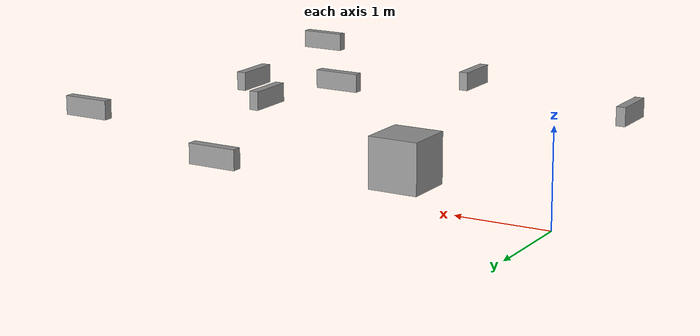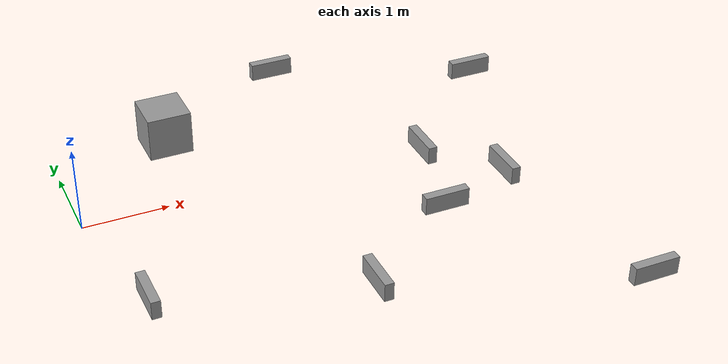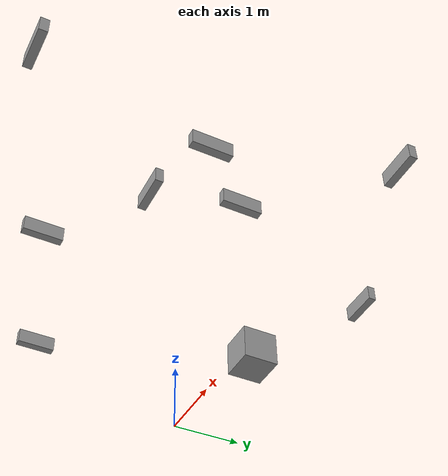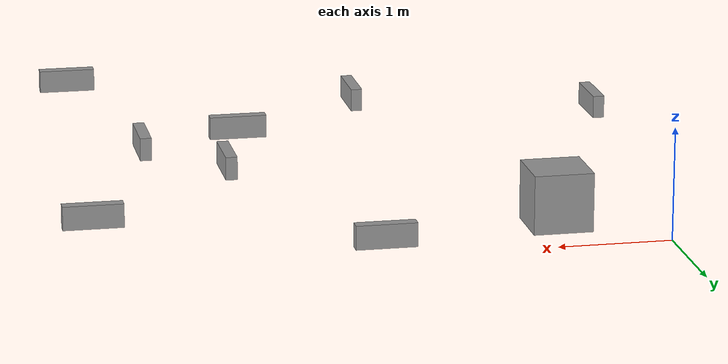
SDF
<?xml version='1.0'?>
<sdf version='1.7'>
  <model name='hyo_2'>
    <model name='hyo_1'>
      <link name='link'>
        <inertial>
          <mass>1</mass>
          <inertia>
            <ixx>0.166667</ixx>
            <ixy>0</ixy>
            <ixz>0</ixz>
            <iyy>0.166667</iyy>
            <iyz>0</iyz>
            <izz>0.166667</izz>
          </inertia>
          <pose>0 0 0 0 -0 0</pose>
        </inertial>
        <self_collide>0</self_collide>
        <enable_wind>0</enable_wind>
        <kinematic>0</kinematic>
        <pose>1.18783 0.618757 0.658808 0 -0 0</pose>
        <gravity>0</gravity>
        <visual name='visual'>
          <geometry>
            <box>
              <size>0.5 0.5 0.5</size>
            </box>
          </geometry>
          <material>
            <script>
              <name>Gazebo/Grey</name>
              <uri>file://media/materials/scripts/gazebo.material</uri>
            </script>
            <shader type='pixel'>
              <normal_map>__default__</normal_map>
            </shader>
            <ambient>0.3 0.3 0.3 1</ambient>
            <diffuse>0.7 0.7 0.7 1</diffuse>
            <specular>0.01 0.01 0.01 1</specular>
            <emissive>0 0 0 1</emissive>
          </material>
          <pose>0 0 0 0 -0 0</pose>
          <transparency>0</transparency>
          <cast_shadows>1</cast_shadows>
        </visual>
        <collision name='collision'>
          <laser_retro>0</laser_retro>
          <max_contacts>10</max_contacts>
          <pose>0 0 0 0 -0 0</pose>
          <geometry>
            <box>
              <size>1 1 1</size>
            </box>
          </geometry>
          <surface>
            <friction>
              <ode>
                <mu>1</mu>
                <mu2>1</mu2>
                <fdir1>0 0 0</fdir1>
                <slip1>0</slip1>
                <slip2>0</slip2>
              </ode>
              <torsional>
                <coefficient>1</coefficient>
                <patch_radius>0</patch_radius>
                <surface_radius>0</surface_radius>
                <use_patch_radius>1</use_patch_radius>
                <ode>
                  <slip>0</slip>
                </ode>
              </torsional>
            </friction>
            <bounce>
              <restitution_coefficient>0</restitution_coefficient>
              <threshold>1e+06</threshold>
            </bounce>
            <contact>
              <collide_without_contact>0</collide_without_contact>
              <collide_without_contact_bitmask>1</collide_without_contact_bitmask>
              <collide_bitmask>1</collide_bitmask>
              <ode>
                <soft_cfm>0</soft_cfm>
                <soft_erp>0.2</soft_erp>
                <kp>1e+13</kp>
                <kd>1</kd>
                <max_vel>0.01</max_vel>
                <min_depth>0</min_depth>
              </ode>
              <bullet>
                <split_impulse>1</split_impulse>
                <split_impulse_penetration_threshold>-0.01</split_impulse_penetration_threshold>
                <soft_cfm>0</soft_cfm>
                <soft_erp>0.2</soft_erp>
                <kp>1e+13</kp>
                <kd>1</kd>
              </bullet>
            </contact>
          </surface>
        </collision>
      </link>
      <link name='link_clone_0_clone'>
        <inertial>
          <mass>1</mass>
          <inertia>
            <ixx>0.166667</ixx>
            <ixy>0</ixy>
            <ixz>0</ixz>
            <iyy>0.166667</iyy>
            <iyz>0</iyz>
            <izz>0.166667</izz>
          </inertia>
          <pose>0 0 0 0 -0 0</pose>
        </inertial>
        <self_collide>0</self_collide>
        <enable_wind>0</enable_wind>
        <kinematic>0</kinematic>
        <pose>4.32452 -1.61475 0.658808 0 -0 0</pose>
        <gravity>0</gravity>
        <visual name='visual'>
          <geometry>
            <box>
              <size>0.1 0.5 0.2</size>
            </box>
          </geometry>
          <material>
            <script>
              <name>Gazebo/Grey</name>
              <uri>file://media/materials/scripts/gazebo.material</uri>
            </script>
            <shader type='pixel'>
              <normal_map>__default__</normal_map>
            </shader>
            <ambient>0.3 0.3 0.3 1</ambient>
            <diffuse>0.7 0.7 0.7 1</diffuse>
            <specular>0.01 0.01 0.01 1</specular>
            <emissive>0 0 0 1</emissive>
          </material>
          <pose>0 0 0 0 -0 0</pose>
          <transparency>0</transparency>
          <cast_shadows>1</cast_shadows>
        </visual>
        <collision name='collision'>
          <laser_retro>0</laser_retro>
          <max_contacts>10</max_contacts>
          <pose>0 0 0 0 -0 0</pose>
          <geometry>
            <box>
              <size>1 1 1</size>
            </box>
          </geometry>
          <surface>
            <friction>
              <ode>
                <mu>1</mu>
                <mu2>1</mu2>
                <fdir1>0 0 0</fdir1>
                <slip1>0</slip1>
                <slip2>0</slip2>
              </ode>
              <torsional>
                <coefficient>1</coefficient>
                <patch_radius>0</patch_radius>
                <surface_radius>0</surface_radius>
                <use_patch_radius>1</use_patch_radius>
                <ode>
                  <slip>0</slip>
                </ode>
              </torsional>
            </friction>
            <bounce>
              <restitution_coefficient>0</restitution_coefficient>
              <threshold>1e+06</threshold>
            </bounce>
            <contact>
              <collide_without_contact>0</collide_without_contact>
              <collide_without_contact_bitmask>1</collide_without_contact_bitmask>
              <collide_bitmask>1</collide_bitmask>
              <ode>
                <soft_cfm>0</soft_cfm>
                <soft_erp>0.2</soft_erp>
                <kp>1e+13</kp>
                <kd>1</kd>
                <max_vel>0.01</max_vel>
                <min_depth>0</min_depth>
              </ode>
              <bullet>
                <split_impulse>1</split_impulse>
                <split_impulse_penetration_threshold>-0.01</split_impulse_penetration_threshold>
                <soft_cfm>0</soft_cfm>
                <soft_erp>0.2</soft_erp>
                <kp>1e+13</kp>
                <kd>1</kd>
              </bullet>
            </contact>
          </surface>
        </collision>
      </link>
      <link name='link_clone_0_clone_0'>
        <inertial>
          <mass>1</mass>
          <inertia>
            <ixx>0.166667</ixx>
            <ixy>0</ixy>
            <ixz>0</ixz>
            <iyy>0.166667</iyy>
            <iyz>0</iyz>
            <izz>0.166667</izz>
          </inertia>
          <pose>0 0 0 0 -0 0</pose>
        </inertial>
        <self_collide>0</self_collide>
        <enable_wind>0</enable_wind>
        <kinematic>0</kinematic>
        <pose>3.69004 -0.905953 0.658808 0 -0 0</pose>
        <gravity>0</gravity>
        <visual name='visual'>
          <geometry>
            <box>
              <size>0.1 0.5 0.2</size>
            </box>
          </geometry>
          <material>
            <script>
              <name>Gazebo/Grey</name>
              <uri>file://media/materials/scripts/gazebo.material</uri>
            </script>
            <shader type='pixel'>
              <normal_map>__default__</normal_map>
            </shader>
            <ambient>0.3 0.3 0.3 1</ambient>
            <diffuse>0.7 0.7 0.7 1</diffuse>
            <specular>0.01 0.01 0.01 1</specular>
            <emissive>0 0 0 1</emissive>
          </material>
          <pose>0 0 0 0 -0 0</pose>
          <transparency>0</transparency>
          <cast_shadows>1</cast_shadows>
        </visual>
        <collision name='collision'>
          <laser_retro>0</laser_retro>
          <max_contacts>10</max_contacts>
          <pose>0 0 0 0 -0 0</pose>
          <geometry>
            <box>
              <size>1 1 1</size>
            </box>
          </geometry>
          <surface>
            <friction>
              <ode>
                <mu>1</mu>
                <mu2>1</mu2>
                <fdir1>0 0 0</fdir1>
                <slip1>0</slip1>
                <slip2>0</slip2>
              </ode>
              <torsional>
                <coefficient>1</coefficient>
                <patch_radius>0</patch_radius>
                <surface_radius>0</surface_radius>
                <use_patch_radius>1</use_patch_radius>
                <ode>
                  <slip>0</slip>
                </ode>
              </torsional>
            </friction>
            <bounce>
              <restitution_coefficient>0</restitution_coefficient>
              <threshold>1e+06</threshold>
            </bounce>
            <contact>
              <collide_without_contact>0</collide_without_contact>
              <collide_without_contact_bitmask>1</collide_without_contact_bitmask>
              <collide_bitmask>1</collide_bitmask>
              <ode>
                <soft_cfm>0</soft_cfm>
                <soft_erp>0.2</soft_erp>
                <kp>1e+13</kp>
                <kd>1</kd>
                <max_vel>0.01</max_vel>
                <min_depth>0</min_depth>
              </ode>
              <bullet>
                <split_impulse>1</split_impulse>
                <split_impulse_penetration_threshold>-0.01</split_impulse_penetration_threshold>
                <soft_cfm>0</soft_cfm>
                <soft_erp>0.2</soft_erp>
                <kp>1e+13</kp>
                <kd>1</kd>
              </bullet>
            </contact>
          </surface>
        </collision>
      </link>
      <link name='link_clone_0_clone_0_clone'>
        <inertial>
          <mass>1</mass>
          <inertia>
            <ixx>0.166667</ixx>
            <ixy>0</ixy>
            <ixz>0</ixz>
            <iyy>0.166667</iyy>
            <iyz>0</iyz>
            <izz>0.166667</izz>
          </inertia>
          <pose>0 0 0 0 -0 1.0177</pose>
        </inertial>
        <self_collide>0</self_collide>
        <enable_wind>0</enable_wind>
        <kinematic>0</kinematic>
        <pose>3.43346 -1.9428 0.658808 0 -0 1.56564</pose>
        <gravity>0</gravity>
        <visual name='visual'>
          <geometry>
            <box>
              <size>0.1 0.5 0.2</size>
            </box>
          </geometry>
          <material>
            <script>
              <name>Gazebo/Grey</name>
              <uri>file://media/materials/scripts/gazebo.material</uri>
            </script>
            <shader type='pixel'>
              <normal_map>__default__</normal_map>
            </shader>
            <ambient>0.3 0.3 0.3 1</ambient>
            <diffuse>0.7 0.7 0.7 1</diffuse>
            <specular>0.01 0.01 0.01 1</specular>
            <emissive>0 0 0 1</emissive>
          </material>
          <pose>0 0 0 0 -0 0</pose>
          <transparency>0</transparency>
          <cast_shadows>1</cast_shadows>
        </visual>
        <collision name='collision'>
          <laser_retro>0</laser_retro>
          <max_contacts>10</max_contacts>
          <pose>0 0 0 0 -0 0</pose>
          <geometry>
            <box>
              <size>1 1 1</size>
            </box>
          </geometry>
          <surface>
            <friction>
              <ode>
                <mu>1</mu>
                <mu2>1</mu2>
                <fdir1>0 0 0</fdir1>
                <slip1>0</slip1>
                <slip2>0</slip2>
              </ode>
              <torsional>
                <coefficient>1</coefficient>
                <patch_radius>0</patch_radius>
                <surface_radius>0</surface_radius>
                <use_patch_radius>1</use_patch_radius>
                <ode>
                  <slip>0</slip>
                </ode>
              </torsional>
            </friction>
            <bounce>
              <restitution_coefficient>0</restitution_coefficient>
              <threshold>1e+06</threshold>
            </bounce>
            <contact>
              <collide_without_contact>0</collide_without_contact>
              <collide_without_contact_bitmask>1</collide_without_contact_bitmask>
              <collide_bitmask>1</collide_bitmask>
              <ode>
                <soft_cfm>0</soft_cfm>
                <soft_erp>0.2</soft_erp>
                <kp>1e+13</kp>
                <kd>1</kd>
                <max_vel>0.01</max_vel>
                <min_depth>0</min_depth>
              </ode>
              <bullet>
                <split_impulse>1</split_impulse>
                <split_impulse_penetration_threshold>-0.01</split_impulse_penetration_threshold>
                <soft_cfm>0</soft_cfm>
                <soft_erp>0.2</soft_erp>
                <kp>1e+13</kp>
                <kd>1</kd>
              </bullet>
            </contact>
          </surface>
        </collision>
      </link>
      <link name='link_clone_0_clone_0_clone_0'>
        <inertial>
          <mass>1</mass>
          <inertia>
            <ixx>0.166667</ixx>
            <ixy>0</ixy>
            <ixz>0</ixz>
            <iyy>0.166667</iyy>
            <iyz>0</iyz>
            <izz>0.166667</izz>
          </inertia>
          <pose>0 0 0 0 -0 0</pose>
        </inertial>
        <self_collide>0</self_collide>
        <enable_wind>0</enable_wind>
        <kinematic>0</kinematic>
        <pose>0.138566 -2.1814 0.658808 0 -0 0</pose>
        <gravity>0</gravity>
        <visual name='visual'>
          <geometry>
            <box>
              <size>0.1 0.5 0.2</size>
            </box>
          </geometry>
          <material>
            <script>
              <name>Gazebo/Grey</name>
              <uri>file://media/materials/scripts/gazebo.material</uri>
            </script>
            <shader type='pixel'>
              <normal_map>__default__</normal_map>
            </shader>
            <ambient>0.3 0.3 0.3 1</ambient>
            <diffuse>0.7 0.7 0.7 1</diffuse>
            <specular>0.01 0.01 0.01 1</specular>
            <emissive>0 0 0 1</emissive>
          </material>
          <pose>0 0 0 0 -0 0</pose>
          <transparency>0</transparency>
          <cast_shadows>1</cast_shadows>
        </visual>
        <collision name='collision'>
          <laser_retro>0</laser_retro>
          <max_contacts>10</max_contacts>
          <pose>0 0 0 0 -0 0</pose>
          <geometry>
            <box>
              <size>1 1 1</size>
            </box>
          </geometry>
          <surface>
            <friction>
              <ode>
                <mu>1</mu>
                <mu2>1</mu2>
                <fdir1>0 0 0</fdir1>
                <slip1>0</slip1>
                <slip2>0</slip2>
              </ode>
              <torsional>
                <coefficient>1</coefficient>
                <patch_radius>0</patch_radius>
                <surface_radius>0</surface_radius>
                <use_patch_radius>1</use_patch_radius>
                <ode>
                  <slip>0</slip>
                </ode>
              </torsional>
            </friction>
            <bounce>
              <restitution_coefficient>0</restitution_coefficient>
              <threshold>1e+06</threshold>
            </bounce>
            <contact>
              <collide_without_contact>0</collide_without_contact>
              <collide_without_contact_bitmask>1</collide_without_contact_bitmask>
              <collide_bitmask>1</collide_bitmask>
              <ode>
                <soft_cfm>0</soft_cfm>
                <soft_erp>0.2</soft_erp>
                <kp>1e+13</kp>
                <kd>1</kd>
                <max_vel>0.01</max_vel>
                <min_depth>0</min_depth>
              </ode>
              <bullet>
                <split_impulse>1</split_impulse>
                <split_impulse_penetration_threshold>-0.01</split_impulse_penetration_threshold>
                <soft_cfm>0</soft_cfm>
                <soft_erp>0.2</soft_erp>
                <kp>1e+13</kp>
                <kd>1</kd>
              </bullet>
            </contact>
          </surface>
        </collision>
      </link>
      <link name='link_clone_0_clone_0_clone_1'>
        <inertial>
          <mass>1</mass>
          <inertia>
            <ixx>0.166667</ixx>
            <ixy>0</ixy>
            <ixz>0</ixz>
            <iyy>0.166667</iyy>
            <iyz>0</iyz>
            <izz>0.166667</izz>
          </inertia>
          <pose>0 0 0 0 -0 0</pose>
        </inertial>
        <self_collide>0</self_collide>
        <enable_wind>0</enable_wind>
        <kinematic>0</kinematic>
        <pose>2.23591 -2.82746 0.658808 0 -0 0</pose>
        <gravity>0</gravity>
        <visual name='visual'>
          <geometry>
            <box>
              <size>0.1 0.5 0.2</size>
            </box>
          </geometry>
          <material>
            <script>
              <name>Gazebo/Grey</name>
              <uri>file://media/materials/scripts/gazebo.material</uri>
            </script>
            <shader type='pixel'>
              <normal_map>__default__</normal_map>
            </shader>
            <ambient>0.3 0.3 0.3 1</ambient>
            <diffuse>0.7 0.7 0.7 1</diffuse>
            <specular>0.01 0.01 0.01 1</specular>
            <emissive>0 0 0 1</emissive>
          </material>
          <pose>0 0 0 0 -0 0</pose>
          <transparency>0</transparency>
          <cast_shadows>1</cast_shadows>
        </visual>
        <collision name='collision'>
          <laser_retro>0</laser_retro>
          <max_contacts>10</max_contacts>
          <pose>0 0 0 0 -0 0</pose>
          <geometry>
            <box>
              <size>1 1 1</size>
            </box>
          </geometry>
          <surface>
            <friction>
              <ode>
                <mu>1</mu>
                <mu2>1</mu2>
                <fdir1>0 0 0</fdir1>
                <slip1>0</slip1>
                <slip2>0</slip2>
              </ode>
              <torsional>
                <coefficient>1</coefficient>
                <patch_radius>0</patch_radius>
                <surface_radius>0</surface_radius>
                <use_patch_radius>1</use_patch_radius>
                <ode>
                  <slip>0</slip>
                </ode>
              </torsional>
            </friction>
            <bounce>
              <restitution_coefficient>0</restitution_coefficient>
              <threshold>1e+06</threshold>
            </bounce>
            <contact>
              <collide_without_contact>0</collide_without_contact>
              <collide_without_contact_bitmask>1</collide_without_contact_bitmask>
              <collide_bitmask>1</collide_bitmask>
              <ode>
                <soft_cfm>0</soft_cfm>
                <soft_erp>0.2</soft_erp>
                <kp>1e+13</kp>
                <kd>1</kd>
                <max_vel>0.01</max_vel>
                <min_depth>0</min_depth>
              </ode>
              <bullet>
                <split_impulse>1</split_impulse>
                <split_impulse_penetration_threshold>-0.01</split_impulse_penetration_threshold>
                <soft_cfm>0</soft_cfm>
                <soft_erp>0.2</soft_erp>
                <kp>1e+13</kp>
                <kd>1</kd>
              </bullet>
            </contact>
          </surface>
        </collision>
      </link>
      <link name='link_clone_0_clone_0_clone_clone'>
        <inertial>
          <mass>1</mass>
          <inertia>
            <ixx>0.166667</ixx>
            <ixy>0</ixy>
            <ixz>0</ixz>
            <iyy>0.166667</iyy>
            <iyz>0</iyz>
            <izz>0.166667</izz>
          </inertia>
          <pose>0 0 0 0 -0 1.0177</pose>
        </inertial>
        <self_collide>0</self_collide>
        <enable_wind>0</enable_wind>
        <kinematic>0</kinematic>
        <pose>4.995 0.425981 0.658808 0 -0 1.56564</pose>
        <gravity>0</gravity>
        <visual name='visual'>
          <geometry>
            <box>
              <size>0.1 0.5 0.2</size>
            </box>
          </geometry>
          <material>
            <script>
              <name>Gazebo/Grey</name>
              <uri>file://media/materials/scripts/gazebo.material</uri>
            </script>
            <shader type='pixel'>
              <normal_map>__default__</normal_map>
            </shader>
            <ambient>0.3 0.3 0.3 1</ambient>
            <diffuse>0.7 0.7 0.7 1</diffuse>
            <specular>0.01 0.01 0.01 1</specular>
            <emissive>0 0 0 1</emissive>
          </material>
          <pose>0 0 0 0 -0 0</pose>
          <transparency>0</transparency>
          <cast_shadows>1</cast_shadows>
        </visual>
        <collision name='collision'>
          <laser_retro>0</laser_retro>
          <max_contacts>10</max_contacts>
          <pose>0 0 0 0 -0 0</pose>
          <geometry>
            <box>
              <size>1 1 1</size>
            </box>
          </geometry>
          <surface>
            <friction>
              <ode>
                <mu>1</mu>
                <mu2>1</mu2>
                <fdir1>0 0 0</fdir1>
                <slip1>0</slip1>
                <slip2>0</slip2>
              </ode>
              <torsional>
                <coefficient>1</coefficient>
                <patch_radius>0</patch_radius>
                <surface_radius>0</surface_radius>
                <use_patch_radius>1</use_patch_radius>
                <ode>
                  <slip>0</slip>
                </ode>
              </torsional>
            </friction>
            <bounce>
              <restitution_coefficient>0</restitution_coefficient>
              <threshold>1e+06</threshold>
            </bounce>
            <contact>
              <collide_without_contact>0</collide_without_contact>
              <collide_without_contact_bitmask>1</collide_without_contact_bitmask>
              <collide_bitmask>1</collide_bitmask>
              <ode>
                <soft_cfm>0</soft_cfm>
                <soft_erp>0.2</soft_erp>
                <kp>1e+13</kp>
                <kd>1</kd>
                <max_vel>0.01</max_vel>
                <min_depth>0</min_depth>
              </ode>
              <bullet>
                <split_impulse>1</split_impulse>
                <split_impulse_penetration_threshold>-0.01</split_impulse_penetration_threshold>
                <soft_cfm>0</soft_cfm>
                <soft_erp>0.2</soft_erp>
                <kp>1e+13</kp>
                <kd>1</kd>
              </bullet>
            </contact>
          </surface>
        </collision>
      </link>
      <link name='link_clone_0_clone_0_clone_clone_0'>
        <inertial>
          <mass>1</mass>
          <inertia>
            <ixx>0.166667</ixx>
            <ixy>0</ixy>
            <ixz>0</ixz>
            <iyy>0.166667</iyy>
            <iyz>0</iyz>
            <izz>0.166667</izz>
          </inertia>
          <pose>0 0 0 0 -0 1.0177</pose>
        </inertial>
        <self_collide>0</self_collide>
        <enable_wind>0</enable_wind>
        <kinematic>0</kinematic>
        <pose>2.77724 1.37211 0.658808 0 -0 1.56564</pose>
        <gravity>0</gravity>
        <visual name='visual'>
          <geometry>
            <box>
              <size>0.1 0.5 0.2</size>
            </box>
          </geometry>
          <material>
            <script>
              <name>Gazebo/Grey</name>
              <uri>file://media/materials/scripts/gazebo.material</uri>
            </script>
            <shader type='pixel'>
              <normal_map>__default__</normal_map>
            </shader>
            <ambient>0.3 0.3 0.3 1</ambient>
            <diffuse>0.7 0.7 0.7 1</diffuse>
            <specular>0.01 0.01 0.01 1</specular>
            <emissive>0 0 0 1</emissive>
          </material>
          <pose>0 0 0 0 -0 0</pose>
          <transparency>0</transparency>
          <cast_shadows>1</cast_shadows>
        </visual>
        <collision name='collision'>
          <laser_retro>0</laser_retro>
          <max_contacts>10</max_contacts>
          <pose>0 0 0 0 -0 0</pose>
          <geometry>
            <box>
              <size>1 1 1</size>
            </box>
          </geometry>
          <surface>
            <friction>
              <ode>
                <mu>1</mu>
                <mu2>1</mu2>
                <fdir1>0 0 0</fdir1>
                <slip1>0</slip1>
                <slip2>0</slip2>
              </ode>
              <torsional>
                <coefficient>1</coefficient>
                <patch_radius>0</patch_radius>
                <surface_radius>0</surface_radius>
                <use_patch_radius>1</use_patch_radius>
                <ode>
                  <slip>0</slip>
                </ode>
              </torsional>
            </friction>
            <bounce>
              <restitution_coefficient>0</restitution_coefficient>
              <threshold>1e+06</threshold>
            </bounce>
            <contact>
              <collide_without_contact>0</collide_without_contact>
              <collide_without_contact_bitmask>1</collide_without_contact_bitmask>
              <collide_bitmask>1</collide_bitmask>
              <ode>
                <soft_cfm>0</soft_cfm>
                <soft_erp>0.2</soft_erp>
                <kp>1e+13</kp>
                <kd>1</kd>
                <max_vel>0.01</max_vel>
                <min_depth>0</min_depth>
              </ode>
              <bullet>
                <split_impulse>1</split_impulse>
                <split_impulse_penetration_threshold>-0.01</split_impulse_penetration_threshold>
                <soft_cfm>0</soft_cfm>
                <soft_erp>0.2</soft_erp>
                <kp>1e+13</kp>
                <kd>1</kd>
              </bullet>
            </contact>
          </surface>
        </collision>
      </link>
      <link name='link_clone_0_clone_0_clone_clone_1'>
        <inertial>
          <mass>1</mass>
          <inertia>
            <ixx>0.166667</ixx>
            <ixy>0</ixy>
            <ixz>0</ixz>
            <iyy>0.166667</iyy>
            <iyz>0</iyz>
            <izz>0.166667</izz>
          </inertia>
          <pose>0 0 0 0 -0 1.0177</pose>
        </inertial>
        <self_collide>0</self_collide>
        <enable_wind>0</enable_wind>
        <kinematic>0</kinematic>
        <pose>4.74319 -3.79333 0.658808 0 -0 1.56564</pose>
        <gravity>0</gravity>
        <visual name='visual'>
          <geometry>
            <box>
              <size>0.1 0.5 0.2</size>
            </box>
          </geometry>
          <material>
            <script>
              <name>Gazebo/Grey</name>
              <uri>file://media/materials/scripts/gazebo.material</uri>
            </script>
            <shader type='pixel'>
              <normal_map>__default__</normal_map>
            </shader>
            <ambient>0.3 0.3 0.3 1</ambient>
            <diffuse>0.7 0.7 0.7 1</diffuse>
            <specular>0.01 0.01 0.01 1</specular>
            <emissive>0 0 0 1</emissive>
          </material>
          <pose>0 0 0 0 -0 0</pose>
          <transparency>0</transparency>
          <cast_shadows>1</cast_shadows>
        </visual>
        <collision name='collision'>
          <laser_retro>0</laser_retro>
          <max_contacts>10</max_contacts>
          <pose>0 0 0 0 -0 0</pose>
          <geometry>
            <box>
              <size>1 1 1</size>
            </box>
          </geometry>
          <surface>
            <friction>
              <ode>
                <mu>1</mu>
                <mu2>1</mu2>
                <fdir1>0 0 0</fdir1>
                <slip1>0</slip1>
                <slip2>0</slip2>
              </ode>
              <torsional>
                <coefficient>1</coefficient>
                <patch_radius>0</patch_radius>
                <surface_radius>0</surface_radius>
                <use_patch_radius>1</use_patch_radius>
                <ode>
                  <slip>0</slip>
                </ode>
              </torsional>
            </friction>
            <bounce>
              <restitution_coefficient>0</restitution_coefficient>
              <threshold>1e+06</threshold>
            </bounce>
            <contact>
              <collide_without_contact>0</collide_without_contact>
              <collide_without_contact_bitmask>1</collide_without_contact_bitmask>
              <collide_bitmask>1</collide_bitmask>
              <ode>
                <soft_cfm>0</soft_cfm>
                <soft_erp>0.2</soft_erp>
                <kp>1e+13</kp>
                <kd>1</kd>
                <max_vel>0.01</max_vel>
                <min_depth>0</min_depth>
              </ode>
              <bullet>
                <split_impulse>1</split_impulse>
                <split_impulse_penetration_threshold>-0.01</split_impulse_penetration_threshold>
                <soft_cfm>0</soft_cfm>
                <soft_erp>0.2</soft_erp>
                <kp>1e+13</kp>
                <kd>1</kd>
              </bullet>
            </contact>
          </surface>
        </collision>
      </link>
      <static>1</static>
      <allow_auto_disable>1</allow_auto_disable>
      <pose>-0 0 0 0 -0 0</pose>
    </model>
    <static>1</static>
    <allow_auto_disable>1</allow_auto_disable>
  </model>
</sdf>
